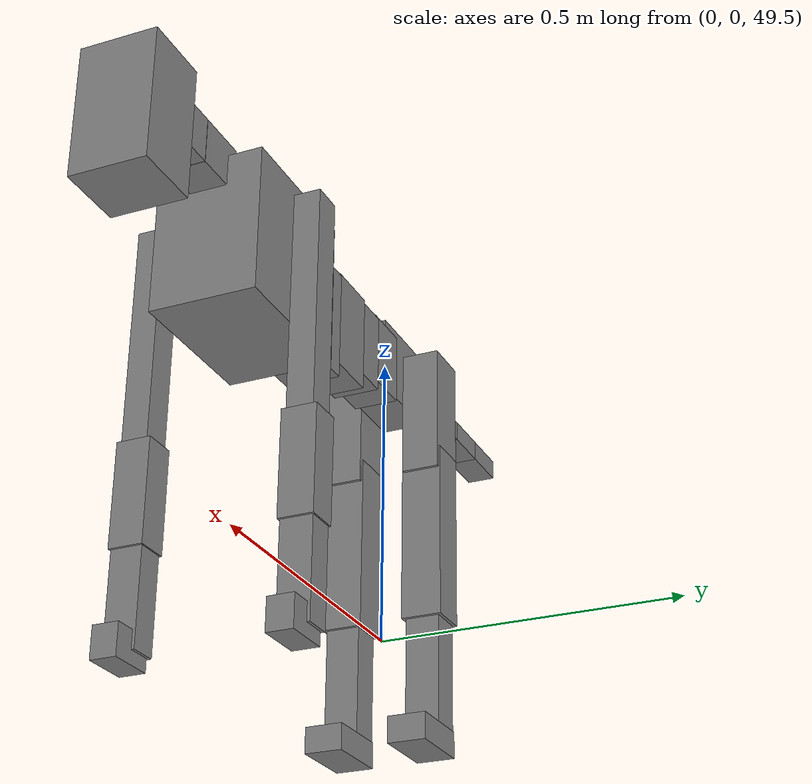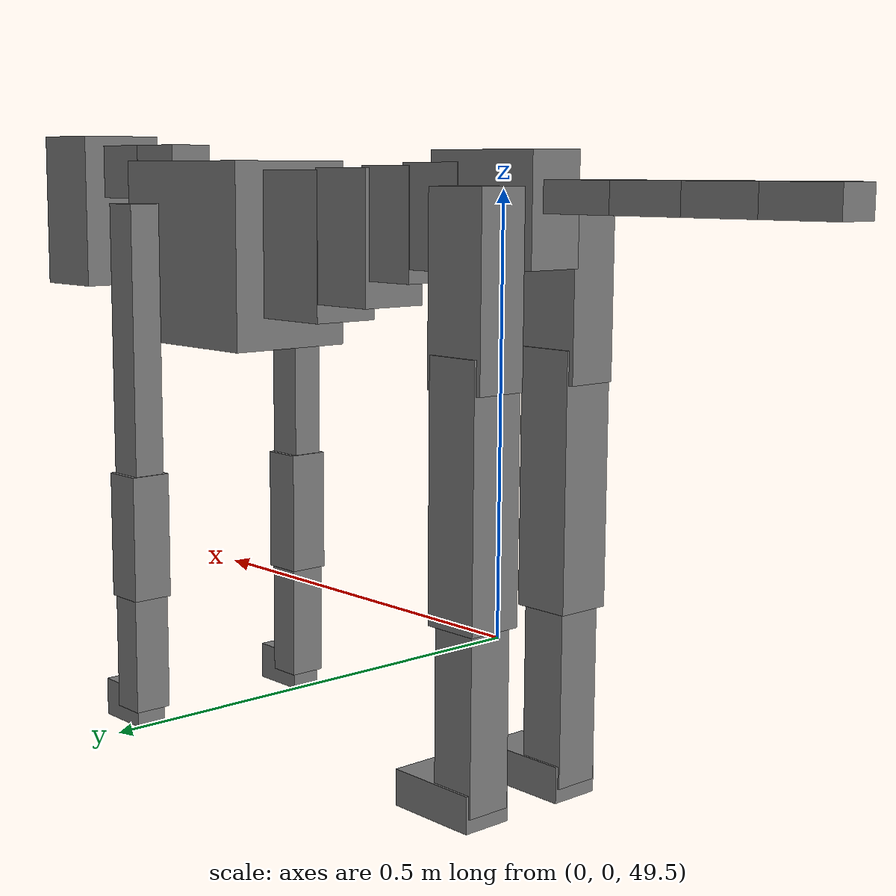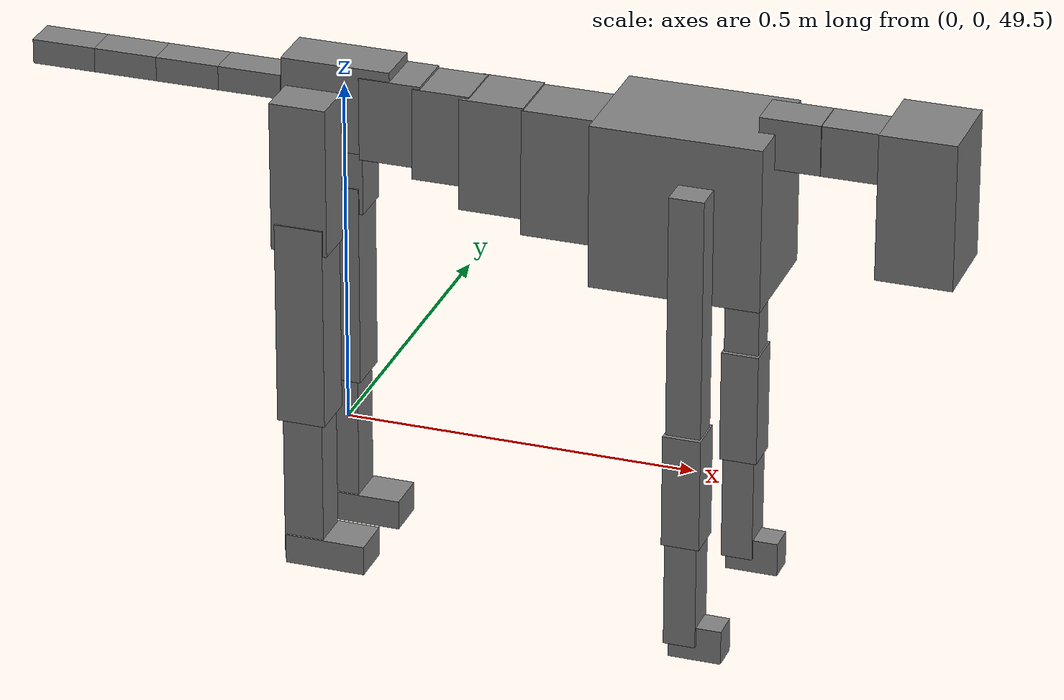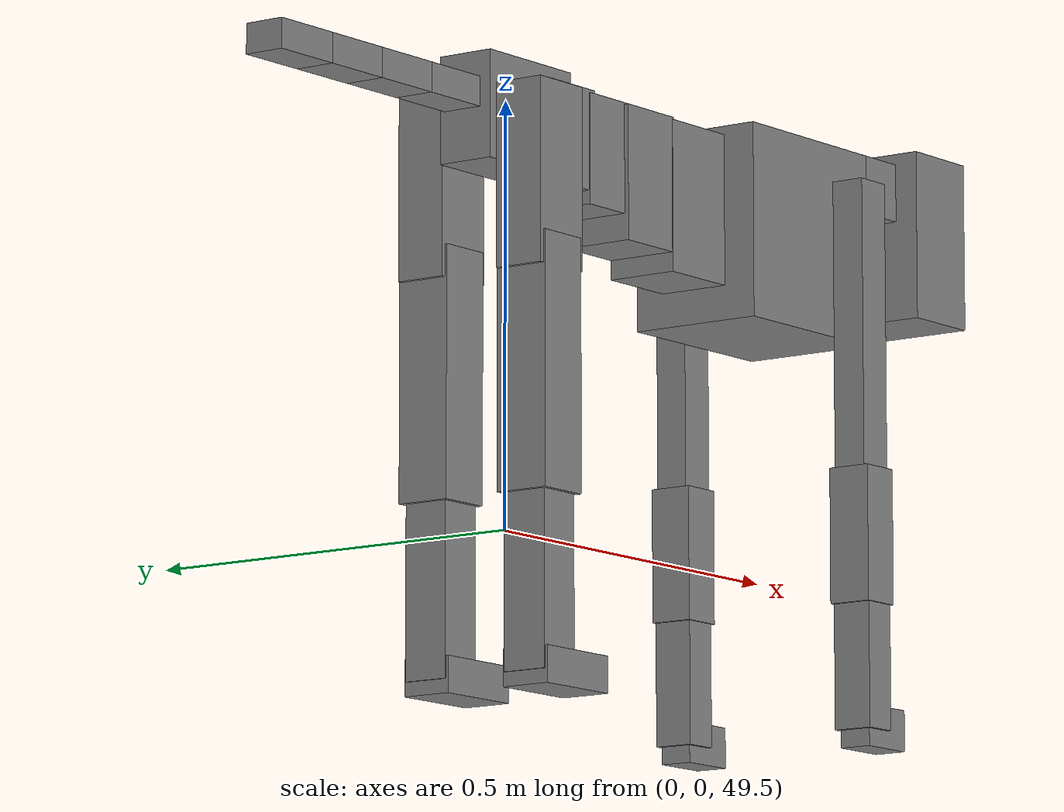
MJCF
<mujoco model="dog">

    <default>
        <joint armature="0.02" stiffness="1" damping="0.2" limited="true"/>
        <geom condim="3" friction="1 0.05 0.05" margin="0.01"/>
        <motor ctrllimited="true" ctrlrange="-1.0 1.0" forcelimited="true" gear="50"/>
    </default>

    <compiler inertiafromgeom="true" angle="radian"/>

    <option timestep="0.016" iterations="50" tolerance="1e-10" solver="Newton" jacobian="dense" cone="pyramidal"/>

    <size nconmax="20000" njmax="60000" nstack="5000000"/>
    <visual>
        <map force="0.1" zfar="30"/>
        <rgba haze="0.15 0.25 0.35 1"/>
        <quality shadowsize="2048"/>
        <global offwidth="800" offheight="800"/>
    </visual>

    <asset>
        <texture type="skybox" builtin="gradient" rgb1="0.3 0.5 0.7" rgb2="0 0 0" width="512" height="512"/>
        <texture name="texplane" type="2d" builtin="checker" rgb1=".2 .3 .4" rgb2=".1 0.15 0.2" width="512" height="512"
                 mark="cross" markrgb=".8 .8 .8"/>
        <texture name="texgeom" type="cube" builtin="flat" mark="cross" width="127" height="1278" rgb1="0.8 0.6 0.4"
                 rgb2="0.8 0.6 0.4" markrgb="1 1 1" random="0.01"/>

        <material name="matplane" reflectance="0.3" texture="texplane" texrepeat="1 1" texuniform="true"/>
        <material name="matgeom" texture="texgeom" texuniform="true" rgba="0.8 0.6 .4 1"/>
    </asset>

    <worldbody>
        <geom name="floor" pos="0 0 0" size="0 0 .25" type="plane" material="matplane" condim="3"/>

        <light directional="false" diffuse=".2 .2 .2" specular="0 0 0" pos="0 0 5" dir="0 0 -1" castshadow="false"/>
        <light mode="targetbodycom" target="torso" directional="false" diffuse=".8 .8 .8" specular="0.3 0.3 0.3"
               pos="0 0 4.0" dir="0 0 -1"/>

        <body name="root" pos="0 0 50">
            <freejoint name="root_1"/>
            <geom type="box" pos="0 0 -0.02" size="0.0774  0.0358  0.063" density="2030"/>

            <body name="spine1" pos="0.054 0 0">
                <joint name="spine1_y" axis="0 1 0" range="0 0.7" limited="true"/>
                <geom type="box" pos="0.02375 0 -0.03" size="0.04375  0.0375  0.05985" density="2030"/>

                <body name="spine2" pos="0.0612 0 0">
                    <joint name="spine2_y" axis="0 1 0" range="-0.15 0.15" limited="true"/>
                    <geom type="box" pos="0.03555  0  -0.04" size="0.04055  0.039  0.06615" density="2030"/>

                    <body name="spine3" pos="0.0730 0 0">
                        <joint name="spine3_y" axis="0 1 0" range="-0.15 0.15" limited="true"/>
                        <geom type="box" pos="0.03555  0  -0.057" size="0.04555  0.0445  0.081" density="2030"/>

                        <body name="spine4" pos="0.0780 0 0">
                            <joint name="spine4_y" axis="0 1 0" range="-0.15 0.15" limited="true"/>
                            <geom type="box" pos="0.05265  0  -0.07" size="0.05265  0.045  0.09135" density="2030"/>

                            <body name="torso" pos="0.1082 0 0">
                                <joint name="torso_y" axis="0 1 0" range="-0.15 0.15" limited="true"/>
                                <geom type="box" pos="0.11925  0  -0.085" size="0.11925  0.085  0.11745"
                                      density="2030"/>

                                <body name="neck1" pos="0.2160  0   0.0180">
                                    <joint name="neck1_y" axis="0 1 0" range="-1.2  -1" limited="true"/>
                                    <geom type="box" pos="0.0423  0  0" size="0.0423  0.03  0.036" density="2325"/>

                                    <body name="neck2" pos="0.0853  0  0">
                                        <joint name="neck2_y" axis="0 1 0" range="0.1  0" limited="true"/>
                                        <geom type="box" pos="0.0423  0  0" size="0.0423  0.03  0.036" density="2325"/>

                                        <body name="head" pos="0.0853  0  0">
                                            <joint name="head_y" axis="0 1 0" range="-0.3  -0.2" limited="true"/>
                                            <geom type="box" pos="0.0531  0  -0.055" size="0.0531  0.06  0.1044"
                                                  density="4030"/>

                                        </body>
                                    </body>
                                </body>

                                <body name="front_shoulder" pos="0.156  0   -0.0480">
                                    <joint name="front_shoulder_y" axis="0 1 0" range="-1 1.5" limited="true"/>
                                    <geom type="box" pos="0 0.13 -0.1605" size="0.0243  0.0208  0.1871" density="1158"/>
                                    <geom type="box" pos="0 -0.13 -0.1605" size="0.0243  0.0208  0.1871"
                                          density="1158"/>

                                    <body name="front_elbow" pos="0  0  -0.3209">
                                        <joint name="front_elbow_y" axis="0 1 0" range="-2 0" limited="true"/>
                                        <geom type="box" pos="0 0.13 -0.0816" size="0.0264  0.0270  0.0816"
                                              density="1081"/>
                                        <geom type="box" pos="0 -0.13 -0.0816" size="0.0264  0.0270  0.0816"
                                              density="1081"/>

                                        <body name="front_wrist" pos="0  0  -0.1632">
                                            <joint name="front_wrist_y" axis="0 1 0" range="-0.2 0" limited="true"/>
                                            <geom type="box" pos="0 0.13 -0.0687" size="0.0223  0.0248  0.0818"
                                                  density="1664"/>
                                            <geom type="box" pos="0 -0.13 -0.0687" size="0.0223  0.0248  0.0818"
                                                  density="1664"/>

                                            <body name="front_finger_end" pos="0  0  -0.1373">
                                                <joint name="front_finger_y" axis="0 1 0" range="-0.4 1"
                                                       limited="true"/>
                                                <geom type="box" pos="0.0203  0.13  -0.0097"
                                                      size="0.0372  0.0203  0.0247" density="1515"/>
                                                <geom type="box" pos="0.0203  -0.13  -0.0097"
                                                      size="0.0372  0.0203  0.0247" density="1515"/>

                                            </body>

                                        </body>
                                    </body>
                                </body>

                            </body>
                        </body>
                    </body>
                </body>
            </body>

            <body name="back_hip" pos="-0.03 0 -0.018">
                <joint name="back_hip_y" axis="0 1 0" range="-1.5 0.3" limited="true"/>
                <geom type="box" pos="0 0.07 -0.0849" size="0.0399  0.0313  0.1077" density="1154"/>
                <geom type="box" pos="0 -0.07 -0.0849" size="0.0399  0.0313  0.1077" density="1154"/>

                <body name="back_knee" pos="0  0  -0.1698">
                    <joint name="back_knee_y" axis="0 1 0" range="0 2.8" limited="true"/>
                    <geom type="box" pos="0 0.07 -0.1322" size="0.0343  0.0338  0.1477" density="1227"/>
                    <geom type="box" pos="0 -0.07 -0.1322" size="0.0343  0.0338  0.1477" density="1227"/>

                    <body name="back_ankle" pos="0  0  -0.2644">
                        <joint name="back_ankle_y" axis="0 1 0" range="-2.2 0" limited="true"/>
                        <geom type="box" pos="0 0.07 -0.1043" size="0.0282  0.0282  0.1156" density="1284"/>
                        <geom type="box" pos="0 -0.07 -0.1043" size="0.0282  0.0282  0.1156" density="1284"/>

                        <body name="back_toe_end" pos="0  0  -0.2087">
                            <joint name="back_toe_y" axis="0 1 0" range="-0.4 1" limited="true"/>
                            <geom type="box" pos="0.0312  0.07  -0.0064" size="0.0572  0.0312  0.0214" density="1515"/>
                            <geom type="box" pos="0.0312  -0.07  -0.0064" size="0.0572  0.0312  0.0214" density="1515"/>

                        </body>
                    </body>
                </body>
            </body>

            <body name="tail1" pos="-0.074 0 -0.006">
                <joint name="tail1_y" axis="0 1 0" range="-0.2 0.2" limited="true"/>
                <geom type="box" pos="-0.0536  0  0" size="0.045  0.025  0.0175" density="1587"/>

                <body name="tail2" pos="-0.09 0 0">
                    <joint name="tail2_y" axis="0 1 0" range="-0.2 0.2" limited="true"/>
                    <geom type="box" pos="-0.0536  0  0" size="0.045  0.025  0.0175" density="1587"/>

                    <body name="tail3" pos="-0.09 0 0">
                        <joint name="tail3_y" axis="0 1 0" range="-0.2 0.2" limited="true"/>
                        <geom type="box" pos="-0.0536  0  0" size="0.045  0.025  0.0175" density="1587"/>

                        <body name="tail4" pos="-0.09 0 0">
                            <joint name="tail4_y" axis="0 1 0" range="-0.2 0.2" limited="true"/>
                            <geom type="box" pos="-0.0536  0  0" size="0.045  0.025  0.0175" density="1587"/>

                        </body>
                    </body>
                </body>
            </body>
        </body>
    </worldbody>

    <actuator>
        <motor joint="spine1_y" forcerange="-150 150     "/>
        <motor joint="spine2_y" forcerange="-150 150     "/>
        <motor joint="spine3_y" forcerange="-150 150     "/>
        <motor joint="spine4_y" forcerange="-150 150     "/>
        <motor joint="torso_y" forcerange="-150 150     "/>
        <motor joint="neck1_y" forcerange="-100 100       "/>
        <motor joint="neck2_y" forcerange="-100 100       "/>
        <motor joint="head_y" forcerange="-150 150       "/>
        <motor joint="front_shoulder_y" forcerange="-135.41 103.26"/>
        <motor joint="front_elbow_y" forcerange="-194.59 101.68"/>
        <motor joint="front_wrist_y" forcerange="-130.22 68.21"/>
        <motor joint="front_finger_y" forcerange="-45.90 22.38"/>
        <motor joint="back_hip_y" forcerange="-228.64 388.93"/>
        <motor joint="back_knee_y" forcerange="-364.42 327.76"/>
        <motor joint="back_angle_y" forcerange="-102.63 248.11"/>
        <motor joint="back_toe_y" forcerange="-100.56 68.94"/>
        <motor joint="tail1_y" forcerange="-50 50     "/>
        <motor joint="tail2_y" forcerange="-50 50     "/>
        <motor joint="tail3_y" forcerange="-50 50     "/>
        <motor joint="tail4_y" forcerange="-50 50     "/>
    </actuator>
</mujoco>
